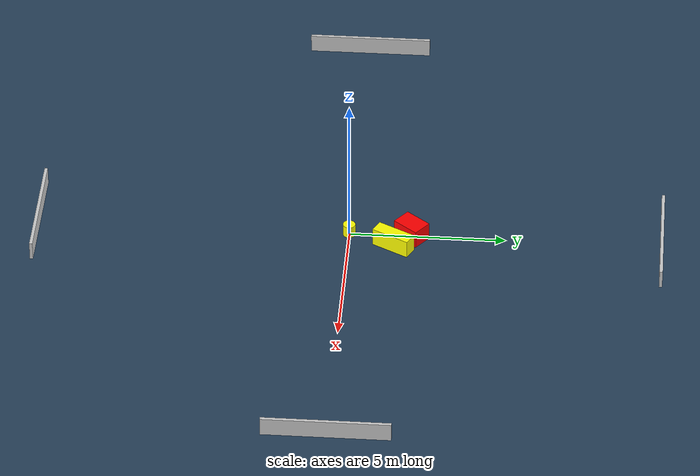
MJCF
<?xml version="1.0" ?>
<mujoco model="generated_environment">
  <option timestep="0.01" integrator="RK4" cone="elliptic"/>
  <default>
    <geom density="1"/>
  </default>
  <asset>
    <texture builtin="gradient" height="3072" name="skybox" rgb1="0.3 0.5 0.7" rgb2="0 0 0" type="skybox" width="512"/>
    <texture builtin="checker" height="300" name="groundplane" rgb1="0.2 0.3 0.4" rgb2="0.1 0.2 0.3" type="2d" width="300"/>
    <material name="groundplane" reflectance="0.2" texrepeat="5 5" texture="groundplane"/>
  </asset>
  <worldbody>
    <light dir="0 0 -1" directional="true" pos="0 0 1.5"/>
    <geom condim="3" friction="0.5 0.005 0.001" material="groundplane" name="floor" pos="0 0 0" size="0 0 0.05" type="plane"/>
    <body name="walls">
      <geom name="wall_1" condim="4" pos="-10.0 0.0 0.3" rgba="0.800000011920929 0.800000011920929 0.800000011920929 1.0" size="0.05 2.0 0.3" type="box"/>
      <geom name="wall_2" condim="4" pos="10.0 0.0 0.3" rgba="0.800000011920929 0.800000011920929 0.800000011920929 1.0" size="0.05 2.0 0.3" type="box"/>
      <geom name="wall_3" condim="4" pos="0.0 -10.0 0.3" rgba="0.800000011920929 0.800000011920929 0.800000011920929 1.0" size="2.0 0.05 0.3" type="box"/>
      <geom name="wall_4" condim="4" pos="0.0 10.0 0.3" rgba="0.800000011920929 0.800000011920929 0.800000011920929 1.0" size="2.0 0.05 0.3" type="box"/>
    </body>
    <body name="robot">
      <joint name="joint_x" type="slide" pos="0 0 0" axis="1 0 0"/>
      <joint name="joint_y" type="slide" pos="0 0 0" axis="0 1 0"/>
      <geom name="robot" type="cylinder" pos="0.0 0.0 0.2" size="0.2 0.2 0.0" mass="5.0" friction="1.0 0.005 0.0001" condim="4" rgba="1.0 1.0 0.0 1.0"/>
    </body>
    <body name="obstacle_1_movable">
      <geom name="obstacle_1_movable" condim="4" pos="0.5775549366457899 1.4517953584451857 0.3" euler="0 0 331.93827936291115" friction="0.0 0.005 0.001" rgba="1.0 1.0 0.0 1.0" size="0.2208804742991657 0.638836516829459 0.3" type="box" mass="0.1"/>
      <joint type="free"/>
    </body>
    <body name="obstacle_2_static">
      <geom name="obstacle_2_static" condim="4" pos="0.010003354855016678 1.9994077769957042 0.3" euler="0 0 141.2017507993592" friction="0.0 0.005 0.001" rgba="1.0 0.0 0.0 1.0" size="0.322640882138362 0.46132374892520844 0.3" type="box"/>
    </body>
  </worldbody>
  <actuator>
    <motor name="actuator_x" joint="joint_x" gear="1" ctrlrange="-1 1"/>
    <motor name="actuator_y" joint="joint_y" gear="1" ctrlrange="-1 1"/>
  </actuator>
</mujoco>
